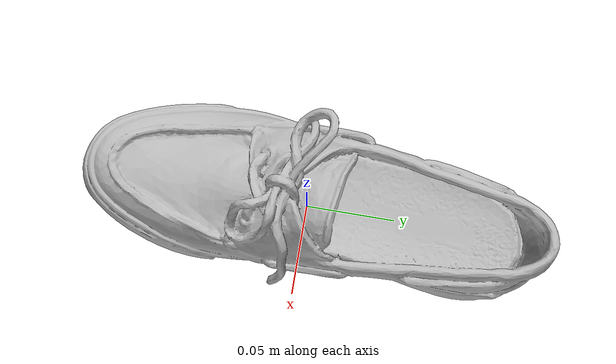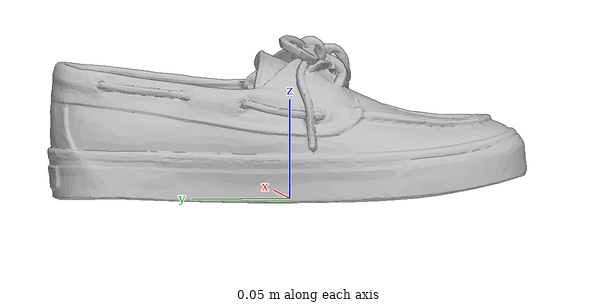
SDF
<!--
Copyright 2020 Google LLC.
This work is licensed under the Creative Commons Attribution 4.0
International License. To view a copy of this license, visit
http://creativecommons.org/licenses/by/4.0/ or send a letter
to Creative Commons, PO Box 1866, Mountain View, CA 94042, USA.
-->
<?xml version="1.0" ?>
<sdf version="1.6">
  <model name="Womens_Bluefish_2Eye_Boat_Shoe_in_Linen_Oat">
    <link name="link_0">
      <visual name="visual">
        <geometry>
          <mesh>
            <uri>meshes/model.obj</uri>
          </mesh>
        </geometry>
      </visual>
      <collision name="collision_0">
        <geometry>
          <mesh>
            <uri>meshes/model.obj</uri>
          </mesh>
        </geometry>
      </collision>
    </link>
  </model>
</sdf>
